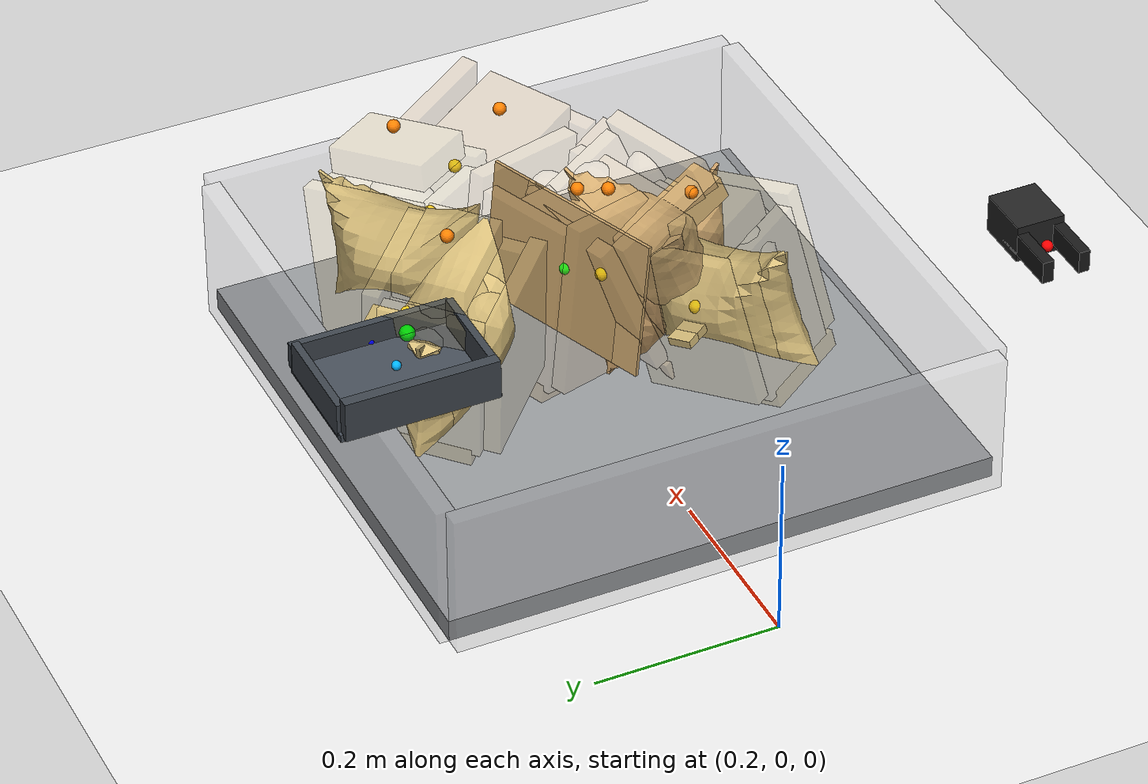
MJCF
<mujoco model="low_fill_top_collapsed_leaning_wedged_ep0_try1">
  <compiler angle="radian" coordinate="local" inertiafromgeom="true" meshdir="D:/Michael/2025/01.Research/01.Parceldetection/16.Pybullet/bullet3-master (1)/bullet3-master/examples/pybullet/examples/DeformableTest/Sackcodex2/object"/>
  <option timestep="0.002" gravity="0 0 -9.81" integrator="implicitfast" iterations="100" tolerance="1e-8"/>
  <size memory="768M" nconmax="12000"/>

  <visual>
    <global azimuth="128" elevation="-20"/>
    <headlight ambient="0.34 0.34 0.34" diffuse="0.78 0.78 0.78" specular="0.15 0.15 0.15"/>
    <rgba haze="0.11 0.13 0.18 1"/>
  </visual>

  <default>
    <geom condim="4" friction="1.15 0.03 0.01" margin="0.003" solimp="0.93 0.98 0.003" solref="0.012 1"/>
    <joint damping="1.2" armature="0.002"/>
    <position kp="2500" forcelimited="true" forcerange="-420 420"/>
    <motor ctrllimited="true"/>
  </default>

  <asset>
    <mesh name="sack_0_visual_mesh" file="sack10.obj" scale="0.0665 0.0665 0.0680"/>
    <mesh name="sack_1_visual_mesh" file="sack9.obj" scale="0.0704 0.0704 0.0740"/>
    <mesh name="sack_2_visual_mesh" file="sack2.obj" scale="0.0737 0.0737 0.0770"/>
    <mesh name="sack_3_visual_mesh" file="sack7.obj" scale="0.0715 0.0715 0.0766"/>
    <mesh name="sack_4_visual_mesh" file="sack3.obj" scale="0.0735 0.0735 0.0791"/>
    <mesh name="sack_5_visual_mesh" file="sack9.obj" scale="0.0733 0.0733 0.0775"/>
  </asset>

  <worldbody>
    <light name="key" pos="0.85 0.15 1.8" dir="-0.2 -0.1 -1" directional="true"/>
    <geom name="floor" type="plane" size="2 2 0.1" rgba="0.93 0.93 0.93 1"/>
    <geom name="work_pad" type="box" pos="0.62 0 0.012" size="0.30 0.30 0.012" rgba="0.60 0.61 0.62 1" friction="1.4 0.05 0.01"/>
    <geom name="corral_front" type="box" pos="0.93 0.00 0.08" size="0.010 0.30 0.08" rgba="0.55 0.55 0.58 0.22" friction="1.0 0.03 0.01"/>
    <geom name="corral_back" type="box" pos="0.31 0.00 0.08" size="0.010 0.30 0.08" rgba="0.55 0.55 0.58 0.18" friction="1.0 0.03 0.01"/>
    <geom name="corral_left" type="box" pos="0.62 0.30 0.08" size="0.30 0.010 0.08" rgba="0.55 0.55 0.58 0.14" friction="1.0 0.03 0.01"/>
    <geom name="corral_right" type="box" pos="0.62 -0.30 0.08" size="0.30 0.010 0.08" rgba="0.55 0.55 0.58 0.14" friction="1.0 0.03 0.01"/>
    <camera name="overview" pos="1.22 0.00 0.92" xyaxes="0 1 0 -0.46 0 0.88"/>

    <body name="gripper_mocap" mocap="true" pos="0.36 -0.33 0.30" quat="0.707107 0 -0.707107 0"/>
    <body name="scoop_mocap" mocap="true" pos="0.42 0.28 0.20" quat="1 0 0 0"/>

    <body name="gripper_ctrl_base" pos="0.36 -0.33 0.30">
      <inertial pos="0 0 0" mass="0.001" diaginertia="1e-6 1e-6 1e-6"/>
      <joint name="gripper_ctrl_x" type="slide" axis="1 0 0" limited="true" range="0.20 1.00"/>
      <body name="gripper_ctrl_y_body">
        <inertial pos="0 0 0" mass="0.001" diaginertia="1e-6 1e-6 1e-6"/>
        <joint name="gripper_ctrl_y" type="slide" axis="0 1 0" limited="true" range="-0.60 0.60"/>
        <body name="gripper_ctrl_z_body">
          <inertial pos="0 0 0" mass="0.001" diaginertia="1e-6 1e-6 1e-6"/>
          <joint name="gripper_ctrl_z" type="slide" axis="0 0 1" limited="true" range="0.04 0.70"/>
          <body name="gripper_ctrl_yaw_body">
            <inertial pos="0 0 0" mass="0.001" diaginertia="1e-6 1e-6 1e-6"/>
            <joint name="gripper_ctrl_yaw" type="hinge" axis="0 0 1" limited="true" range="-3.1416 3.1416"/>
            <body name="gripper_ctrl_pitch_body">
              <inertial pos="0 0 0" mass="0.001" diaginertia="1e-6 1e-6 1e-6"/>
              <joint name="gripper_ctrl_pitch" type="hinge" axis="0 1 0" limited="true" range="-3.1416 3.1416"/>
              <body name="gripper_ctrl_roll_body">
                <inertial pos="0 0 0" mass="0.001" diaginertia="1e-6 1e-6 1e-6"/>
                <joint name="gripper_ctrl_roll" type="hinge" axis="1 0 0" limited="true" range="-3.1416 3.1416"/>
              </body>
            </body>
          </body>
        </body>
      </body>
    </body>

    <body name="scoop_ctrl_base" pos="0.42 0.28 0.20">
      <inertial pos="0 0 0" mass="0.001" diaginertia="1e-6 1e-6 1e-6"/>
      <joint name="scoop_ctrl_x" type="slide" axis="1 0 0" limited="true" range="0.20 1.00"/>
      <body name="scoop_ctrl_y_body">
        <inertial pos="0 0 0" mass="0.001" diaginertia="1e-6 1e-6 1e-6"/>
        <joint name="scoop_ctrl_y" type="slide" axis="0 1 0" limited="true" range="-0.60 0.60"/>
        <body name="scoop_ctrl_z_body">
          <inertial pos="0 0 0" mass="0.001" diaginertia="1e-6 1e-6 1e-6"/>
          <joint name="scoop_ctrl_z" type="slide" axis="0 0 1" limited="true" range="0.04 0.70"/>
          <body name="scoop_ctrl_yaw_body">
            <inertial pos="0 0 0" mass="0.001" diaginertia="1e-6 1e-6 1e-6"/>
            <joint name="scoop_ctrl_yaw" type="hinge" axis="0 0 1" limited="true" range="-3.1416 3.1416"/>
            <body name="scoop_ctrl_pitch_body">
              <inertial pos="0 0 0" mass="0.001" diaginertia="1e-6 1e-6 1e-6"/>
              <joint name="scoop_ctrl_pitch" type="hinge" axis="0 1 0" limited="true" range="-3.1416 3.1416"/>
              <body name="scoop_ctrl_roll_body">
                <inertial pos="0 0 0" mass="0.001" diaginertia="1e-6 1e-6 1e-6"/>
                <joint name="scoop_ctrl_roll" type="hinge" axis="1 0 0" limited="true" range="-3.1416 3.1416"/>
              </body>
            </body>
          </body>
        </body>
      </body>
    </body>

    <body name="gripper_tool" pos="0.36 -0.33 0.30" quat="0.707107 0 -0.707107 0">
      <freejoint name="gripper_tool_free"/>
      <inertial pos="0 0 0.04" mass="0.08" diaginertia="0.0002 0.0002 0.0002"/>
      <geom name="gripper_palm" type="box" pos="0 0 0.030" size="0.020 0.026 0.030" rgba="0.14 0.14 0.14 1"/>
      <body name="left_finger_body" pos="0 0 0.072">
        <joint name="left_finger_slide" type="slide" axis="0 1 0" limited="true" range="0.010 0.040" damping="12"/>
        <geom name="left_finger_geom" type="box" pos="0 0.020 0" size="0.012 0.006 0.040" rgba="0.10 0.10 0.10 1" friction="2.2 0.05 0.01"/>
      </body>
      <body name="right_finger_body" pos="0 0 0.072">
        <joint name="right_finger_slide" type="slide" axis="0 -1 0" limited="true" range="0.010 0.040" damping="12"/>
        <geom name="right_finger_geom" type="box" pos="0 -0.020 0" size="0.012 0.006 0.040" rgba="0.10 0.10 0.10 1" friction="2.2 0.05 0.01"/>
      </body>
      <site name="gripper_pinch_site" pos="0 0 0.074" size="0.006" rgba="1 0 0 1"/>
    </body>

    <body name="scoop_tool" pos="0.42 0.28 0.20" quat="1 0 0 0">
      <freejoint name="scoop_tool_free"/>
      <inertial pos="0 0 0.02" mass="0.10" diaginertia="0.0003 0.0003 0.0003"/>
      <geom name="scoop_plate" type="box" pos="0.062 0 0" size="0.062 0.085 0.004" rgba="0.28 0.31 0.35 1" friction="1.7 0.05 0.01"/>
      <geom name="scoop_lip" type="box" pos="0.126 0 0.014" size="0.004 0.085 0.014" rgba="0.24 0.27 0.30 1" friction="1.7 0.05 0.01"/>
      <geom name="scoop_left_rail" type="box" pos="0.062 0.082 0.018" size="0.056 0.004 0.018" rgba="0.24 0.27 0.30 1"/>
      <geom name="scoop_right_rail" type="box" pos="0.062 -0.082 0.018" size="0.056 0.004 0.018" rgba="0.24 0.27 0.30 1"/>
      <geom name="scoop_backstop" type="box" pos="0.000 0 0.022" size="0.006 0.082 0.022" rgba="0.24 0.27 0.30 1"/>
      <site name="scoop_tip_site" pos="0.126 0 0.005" size="0.005" rgba="0 0 1 1"/>
      <site name="scoop_center_site" pos="0.060 0 0.020" size="0.005" rgba="0 0.7 1 1"/>
      <site name="score_overlay_site" pos="0.030 0 0.080" size="0.008" rgba="0 1 0 0.8"/>
    </body>

    <body name="sack_0" pos="0.6288 -0.0559 0.1625" euler="-0.3781 -0.0236 0.2628">
      <freejoint name="sack_0_free"/>

      <geom name="sack_0_visual" type="mesh" mesh="sack_0_visual_mesh" rgba="0.820 0.670 0.440 0.92" contype="0" conaffinity="0"/>
      <site name="sack_0_center_site" pos="0 0 0.000" size="0.006" rgba="0 1 0 1"/>
      <site name="sack_0_top_site" pos="0 0.0060 0.0931" size="0.007" rgba="1 0.5 0 1"/>
      <site name="sack_0_side_site" pos="0.0000 0.0475 0.018" size="0.007" rgba="1 0.8 0 1"/>

      <geom name="sack_0_core_geom" type="ellipsoid" pos="0 0 0.0055" size="0.0449 0.0348 0.0666" mass="0.7941" rgba="0.820 0.670 0.440 0.12" friction="1.0 0.03 0.01"/>
      <geom name="sack_0_core_front" type="capsule" fromto="-0.0200 0 -0.0200 0.0450 0 0.0600" size="0.0294" mass="0.1891" rgba="0.820 0.670 0.440 0.10"/>
      <geom name="sack_0_core_left" type="capsule" fromto="-0.008 0.0304 -0.010 0.018 0.0484 0.060" size="0.0241" mass="0.3403" rgba="0.820 0.670 0.440 0.10"/>
      <geom name="sack_0_core_right" type="capsule" fromto="-0.006 -0.0304 -0.008 0.020 -0.0504 0.054" size="0.0221" mass="0.3403" rgba="0.820 0.670 0.440 0.10"/>

      <body name="sack_0_bottom_support_proxy_body" pos="0 0.0149 -0.0893">
        <joint name="sack_0_bottom_x" type="slide" axis="1 0 0" limited="true" range="-0.012 0.012" damping="18" stiffness="442.0"/>
        <joint name="sack_0_bottom_y" type="slide" axis="0 1 0" limited="true" range="-0.012 0.012" damping="18" stiffness="442.0"/>
        <joint name="sack_0_bottom_z" type="slide" axis="0 0 1" limited="true" range="-0.008 0.020" damping="24" stiffness="544.7"/>
        <geom name="sack_0_bottom_support_proxy" type="box" size="0.0724 0.0535 0.0100" mass="0.1512" rgba="0.820 0.670 0.440 0.34" friction="1.55 0.05 0.01"/>
      </body>

      <body name="sack_0_top_grasp_proxy_body" pos="0.0000 0.0060 0.0631">
        <joint name="sack_0_top_x" type="slide" axis="1 0 0" limited="true" range="-0.018 0.018" damping="12" stiffness="169.7"/>
        <joint name="sack_0_top_y" type="slide" axis="0 1 0" limited="true" range="-0.018 0.018" damping="12" stiffness="169.7"/>
        <joint name="sack_0_top_z" type="slide" axis="0 0 1" limited="true" range="-0.040 0.010" damping="14" stiffness="124.0"/>
        <geom name="sack_0_top_grasp_proxy" type="box" size="0.0564 0.0375 0.0150" mass="0.1134" rgba="0.820 0.670 0.440 0.26" friction="2.2 0.05 0.01"/>
      </body>

      <body name="sack_0_left_side_proxy_body" pos="0 0.0680 0.010">
        <joint name="sack_0_left_side_slide" type="slide" axis="0 -1 0" limited="true" range="-0.028 0.016" damping="16" stiffness="216.5"/>
        <geom name="sack_0_left_side_proxy" type="box" size="0.0684 0.0090 0.0873" mass="0.1134" rgba="0.820 0.670 0.440 0.24"/>
      </body>

      <body name="sack_0_right_side_proxy_body" pos="0 -0.0640 0.010">
        <joint name="sack_0_right_side_slide" type="slide" axis="0 1 0" limited="true" range="-0.028 0.016" damping="16" stiffness="200.8"/>
        <geom name="sack_0_right_side_proxy" type="box" size="0.0684 0.0090 0.0873" mass="0.1134" rgba="0.820 0.670 0.440 0.24"/>
      </body>

      <body name="sack_0_front_proxy_body" pos="0.0624 0 0.000">
        <joint name="sack_0_front_slide" type="slide" axis="-1 0 0" limited="true" range="-0.022 0.012" damping="15" stiffness="211.0"/>
        <geom name="sack_0_front_support_proxy" type="box" size="0.0090 0.0535 0.0853" mass="0.0945" rgba="0.820 0.670 0.440 0.22"/>
      </body>

      <body name="sack_0_back_proxy_body" pos="-0.0624 0 0.000">
        <joint name="sack_0_back_slide" type="slide" axis="1 0 0" limited="true" range="-0.022 0.012" damping="15" stiffness="195.3"/>
        <geom name="sack_0_back_support_proxy" type="box" size="0.0090 0.0535 0.0853" mass="0.0945" rgba="0.820 0.670 0.440 0.22"/>
      </body>

      <body name="sack_0_shape_proxy_body" pos="0.0000 0.0224 0.0460">
        <joint name="sack_0_bulge_y" type="slide" axis="0 1 0" limited="true" range="-0.020 0.020" damping="8" stiffness="112.0"/>
        <joint name="sack_0_bulge_z" type="slide" axis="0 0 1" limited="true" range="-0.014 0.028" damping="8" stiffness="109.0"/>
        <geom name="sack_0_shape_proxy" type="ellipsoid" size="0.0201 0.0162 0.0264" mass="0.0756" rgba="0.820 0.670 0.440 0.28"/>
      </body>
    </body>

    <body name="sack_1" pos="0.5594 -0.1162 0.1278" euler="-0.2095 0.1244 -2.5946">
      <freejoint name="sack_1_free"/>

      <geom name="sack_1_visual" type="mesh" mesh="sack_1_visual_mesh" rgba="0.840 0.740 0.480 0.92" contype="0" conaffinity="0"/>
      <site name="sack_1_center_site" pos="0 0 0.000" size="0.006" rgba="0 1 0 1"/>
      <site name="sack_1_top_site" pos="0 -0.0060 0.1324" size="0.007" rgba="1 0.5 0 1"/>
      <site name="sack_1_side_site" pos="0.0000 -0.0476 0.018" size="0.007" rgba="1 0.8 0 1"/>

      <geom name="sack_1_core_geom" type="ellipsoid" pos="0 0 0.0059" size="0.0496 0.0410 0.0876" mass="1.2091" rgba="0.840 0.740 0.480 0.12" friction="1.0 0.03 0.01"/>
      <geom name="sack_1_core_front" type="capsule" fromto="-0.0200 0 -0.0200 0.0450 0 0.0600" size="0.0304" mass="0.2879" rgba="0.840 0.740 0.480 0.10"/>
      <geom name="sack_1_core_left" type="capsule" fromto="-0.008 0.0282 -0.010 0.018 0.0462 0.060" size="0.0241" mass="0.5182" rgba="0.840 0.740 0.480 0.10"/>
      <geom name="sack_1_core_right" type="capsule" fromto="-0.006 -0.0282 -0.008 0.020 -0.0482 0.054" size="0.0221" mass="0.5182" rgba="0.840 0.740 0.480 0.10"/>

      <body name="sack_1_bottom_support_proxy_body" pos="0 0.0086 -0.0881">
        <joint name="sack_1_bottom_x" type="slide" axis="1 0 0" limited="true" range="-0.012 0.012" damping="18" stiffness="470.7"/>
        <joint name="sack_1_bottom_y" type="slide" axis="0 1 0" limited="true" range="-0.012 0.012" damping="18" stiffness="470.7"/>
        <joint name="sack_1_bottom_z" type="slide" axis="0 0 1" limited="true" range="-0.008 0.020" damping="24" stiffness="579.7"/>
        <geom name="sack_1_bottom_support_proxy" type="box" size="0.0713 0.0536 0.0100" mass="0.2303" rgba="0.840 0.740 0.480 0.34" friction="1.55 0.05 0.01"/>
      </body>

      <body name="sack_1_top_grasp_proxy_body" pos="0.0000 -0.0060 0.1024">
        <joint name="sack_1_top_x" type="slide" axis="1 0 0" limited="true" range="-0.018 0.018" damping="12" stiffness="180.8"/>
        <joint name="sack_1_top_y" type="slide" axis="0 1 0" limited="true" range="-0.018 0.018" damping="12" stiffness="180.8"/>
        <joint name="sack_1_top_z" type="slide" axis="0 0 1" limited="true" range="-0.040 0.010" damping="14" stiffness="133.6"/>
        <geom name="sack_1_top_grasp_proxy" type="box" size="0.0553 0.0376 0.0150" mass="0.1727" rgba="0.840 0.740 0.480 0.26" friction="2.2 0.05 0.01"/>
      </body>

      <body name="sack_1_left_side_proxy_body" pos="0 0.0659 0.010">
        <joint name="sack_1_left_side_slide" type="slide" axis="0 -1 0" limited="true" range="-0.028 0.016" damping="16" stiffness="236.8"/>
        <geom name="sack_1_left_side_proxy" type="box" size="0.0673 0.0090 0.0861" mass="0.1727" rgba="0.840 0.740 0.480 0.24"/>
      </body>

      <body name="sack_1_right_side_proxy_body" pos="0 -0.0619 0.010">
        <joint name="sack_1_right_side_slide" type="slide" axis="0 1 0" limited="true" range="-0.028 0.016" damping="16" stiffness="219.6"/>
        <geom name="sack_1_right_side_proxy" type="box" size="0.0673 0.0090 0.0861" mass="0.1727" rgba="0.840 0.740 0.480 0.24"/>
      </body>

      <body name="sack_1_front_proxy_body" pos="0.0613 0 0.000">
        <joint name="sack_1_front_slide" type="slide" axis="-1 0 0" limited="true" range="-0.022 0.012" damping="15" stiffness="225.3"/>
        <geom name="sack_1_front_support_proxy" type="box" size="0.0090 0.0536 0.0841" mass="0.1439" rgba="0.840 0.740 0.480 0.22"/>
      </body>

      <body name="sack_1_back_proxy_body" pos="-0.0613 0 0.000">
        <joint name="sack_1_back_slide" type="slide" axis="1 0 0" limited="true" range="-0.022 0.012" damping="15" stiffness="208.1"/>
        <geom name="sack_1_back_support_proxy" type="box" size="0.0090 0.0536 0.0841" mass="0.1439" rgba="0.840 0.740 0.480 0.22"/>
      </body>

      <body name="sack_1_shape_proxy_body" pos="0.0000 -0.0202 0.0364">
        <joint name="sack_1_bulge_y" type="slide" axis="0 1 0" limited="true" range="-0.020 0.020" damping="8" stiffness="92.9"/>
        <joint name="sack_1_bulge_z" type="slide" axis="0 0 1" limited="true" range="-0.014 0.028" damping="8" stiffness="94.7"/>
        <geom name="sack_1_shape_proxy" type="ellipsoid" size="0.0201 0.0162 0.0261" mass="0.1152" rgba="0.840 0.740 0.480 0.28"/>
      </body>
    </body>

    <body name="sack_2" pos="0.6506 0.0208 0.1417" euler="0.1103 0.0274 -1.1956">
      <freejoint name="sack_2_free"/>

      <geom name="sack_2_visual" type="mesh" mesh="sack_2_visual_mesh" rgba="0.820 0.670 0.440 0.92" contype="0" conaffinity="0"/>
      <site name="sack_2_center_site" pos="0 0 0.000" size="0.006" rgba="0 1 0 1"/>
      <site name="sack_2_top_site" pos="0 -0.0060 0.0985" size="0.007" rgba="1 0.5 0 1"/>
      <site name="sack_2_side_site" pos="0.0000 -0.0494 0.018" size="0.007" rgba="1 0.8 0 1"/>

      <geom name="sack_2_core_geom" type="ellipsoid" pos="0 0 0.0055" size="0.0455 0.0356 0.0678" mass="0.8028" rgba="0.820 0.670 0.440 0.12" friction="1.0 0.03 0.01"/>
      <geom name="sack_2_core_front" type="capsule" fromto="-0.0200 0 -0.0200 0.0450 0 0.0600" size="0.0301" mass="0.1911" rgba="0.820 0.670 0.440 0.10"/>
      <geom name="sack_2_core_left" type="capsule" fromto="-0.008 0.0297 -0.010 0.018 0.0477 0.060" size="0.0241" mass="0.3441" rgba="0.820 0.670 0.440 0.10"/>
      <geom name="sack_2_core_right" type="capsule" fromto="-0.006 -0.0297 -0.008 0.020 -0.0497 0.054" size="0.0221" mass="0.3441" rgba="0.820 0.670 0.440 0.10"/>

      <body name="sack_2_bottom_support_proxy_body" pos="0 0.0071 -0.0985">
        <joint name="sack_2_bottom_x" type="slide" axis="1 0 0" limited="true" range="-0.012 0.012" damping="18" stiffness="464.3"/>
        <joint name="sack_2_bottom_y" type="slide" axis="0 1 0" limited="true" range="-0.012 0.012" damping="18" stiffness="464.3"/>
        <joint name="sack_2_bottom_z" type="slide" axis="0 0 1" limited="true" range="-0.008 0.020" damping="24" stiffness="571.9"/>
        <geom name="sack_2_bottom_support_proxy" type="box" size="0.0731 0.0554 0.0100" mass="0.1529" rgba="0.820 0.670 0.440 0.34" friction="1.55 0.05 0.01"/>
      </body>

      <body name="sack_2_top_grasp_proxy_body" pos="0.0000 -0.0060 0.0685">
        <joint name="sack_2_top_x" type="slide" axis="1 0 0" limited="true" range="-0.018 0.018" damping="12" stiffness="178.3"/>
        <joint name="sack_2_top_y" type="slide" axis="0 1 0" limited="true" range="-0.018 0.018" damping="12" stiffness="178.3"/>
        <joint name="sack_2_top_z" type="slide" axis="0 0 1" limited="true" range="-0.040 0.010" damping="14" stiffness="131.4"/>
        <geom name="sack_2_top_grasp_proxy" type="box" size="0.0571 0.0394 0.0150" mass="0.1147" rgba="0.820 0.670 0.440 0.26" friction="2.2 0.05 0.01"/>
      </body>

      <body name="sack_2_left_side_proxy_body" pos="0 0.0690 0.010">
        <joint name="sack_2_left_side_slide" type="slide" axis="0 -1 0" limited="true" range="-0.028 0.016" damping="16" stiffness="231.3"/>
        <geom name="sack_2_left_side_proxy" type="box" size="0.0691 0.0090 0.0965" mass="0.1147" rgba="0.820 0.670 0.440 0.24"/>
      </body>

      <body name="sack_2_right_side_proxy_body" pos="0 -0.0650 0.010">
        <joint name="sack_2_right_side_slide" type="slide" axis="0 1 0" limited="true" range="-0.028 0.016" damping="16" stiffness="214.4"/>
        <geom name="sack_2_right_side_proxy" type="box" size="0.0691 0.0090 0.0965" mass="0.1147" rgba="0.820 0.670 0.440 0.24"/>
      </body>

      <body name="sack_2_front_proxy_body" pos="0.0631 0 0.000">
        <joint name="sack_2_front_slide" type="slide" axis="-1 0 0" limited="true" range="-0.022 0.012" damping="15" stiffness="222.1"/>
        <geom name="sack_2_front_support_proxy" type="box" size="0.0090 0.0554 0.0945" mass="0.0956" rgba="0.820 0.670 0.440 0.22"/>
      </body>

      <body name="sack_2_back_proxy_body" pos="-0.0631 0 0.000">
        <joint name="sack_2_back_slide" type="slide" axis="1 0 0" limited="true" range="-0.022 0.012" damping="15" stiffness="205.2"/>
        <geom name="sack_2_back_support_proxy" type="box" size="0.0090 0.0554 0.0945" mass="0.0956" rgba="0.820 0.670 0.440 0.22"/>
      </body>

      <body name="sack_2_shape_proxy_body" pos="0.0000 -0.0217 0.0386">
        <joint name="sack_2_bulge_y" type="slide" axis="0 1 0" limited="true" range="-0.020 0.020" damping="8" stiffness="97.2"/>
        <joint name="sack_2_bulge_z" type="slide" axis="0 0 1" limited="true" range="-0.014 0.028" damping="8" stiffness="97.9"/>
        <geom name="sack_2_shape_proxy" type="ellipsoid" size="0.0201 0.0162 0.0264" mass="0.0765" rgba="0.820 0.670 0.440 0.28"/>
      </body>
    </body>

    <body name="sack_3" pos="0.7727 0.1441 0.1241" euler="-0.0400 0.1360 0.6019">
      <freejoint name="sack_3_free"/>

      <geom name="sack_3_visual" type="mesh" mesh="sack_3_visual_mesh" rgba="0.840 0.740 0.480 0.92" contype="0" conaffinity="0"/>
      <site name="sack_3_center_site" pos="0 0 0.000" size="0.006" rgba="0 1 0 1"/>
      <site name="sack_3_top_site" pos="0 -0.0060 0.1422" size="0.007" rgba="1 0.5 0 1"/>
      <site name="sack_3_side_site" pos="0.0000 -0.0491 0.018" size="0.007" rgba="1 0.8 0 1"/>

      <geom name="sack_3_core_geom" type="ellipsoid" pos="0 0 0.0060" size="0.0502 0.0419 0.0891" mass="1.2149" rgba="0.840 0.740 0.480 0.12" friction="1.0 0.03 0.01"/>
      <geom name="sack_3_core_front" type="capsule" fromto="-0.0200 0 -0.0200 0.0450 0 0.0600" size="0.0311" mass="0.2893" rgba="0.840 0.740 0.480 0.10"/>
      <geom name="sack_3_core_left" type="capsule" fromto="-0.008 0.0216 -0.010 0.018 0.0396 0.060" size="0.0240" mass="0.5207" rgba="0.840 0.740 0.480 0.10"/>
      <geom name="sack_3_core_right" type="capsule" fromto="-0.006 -0.0216 -0.008 0.020 -0.0416 0.054" size="0.0220" mass="0.5207" rgba="0.840 0.740 0.480 0.10"/>

      <body name="sack_3_bottom_support_proxy_body" pos="0 0.0104 -0.0889">
        <joint name="sack_3_bottom_x" type="slide" axis="1 0 0" limited="true" range="-0.012 0.012" damping="18" stiffness="491.5"/>
        <joint name="sack_3_bottom_y" type="slide" axis="0 1 0" limited="true" range="-0.012 0.012" damping="18" stiffness="491.5"/>
        <joint name="sack_3_bottom_z" type="slide" axis="0 0 1" limited="true" range="-0.008 0.020" damping="24" stiffness="605.2"/>
        <geom name="sack_3_bottom_support_proxy" type="box" size="0.0719 0.0551 0.0100" mass="0.2314" rgba="0.840 0.740 0.480 0.34" friction="1.55 0.05 0.01"/>
      </body>

      <body name="sack_3_top_grasp_proxy_body" pos="0.0000 -0.0060 0.1122">
        <joint name="sack_3_top_x" type="slide" axis="1 0 0" limited="true" range="-0.018 0.018" damping="12" stiffness="188.9"/>
        <joint name="sack_3_top_y" type="slide" axis="0 1 0" limited="true" range="-0.018 0.018" damping="12" stiffness="188.9"/>
        <joint name="sack_3_top_z" type="slide" axis="0 0 1" limited="true" range="-0.040 0.010" damping="14" stiffness="140.5"/>
        <geom name="sack_3_top_grasp_proxy" type="box" size="0.0559 0.0391 0.0150" mass="0.1736" rgba="0.840 0.740 0.480 0.26" friction="2.2 0.05 0.01"/>
      </body>

      <body name="sack_3_left_side_proxy_body" pos="0 0.0607 0.010">
        <joint name="sack_3_left_side_slide" type="slide" axis="0 -1 0" limited="true" range="-0.028 0.016" damping="16" stiffness="250.9"/>
        <geom name="sack_3_left_side_proxy" type="box" size="0.0679 0.0090 0.0869" mass="0.1736" rgba="0.840 0.740 0.480 0.24"/>
      </body>

      <body name="sack_3_right_side_proxy_body" pos="0 -0.0567 0.010">
        <joint name="sack_3_right_side_slide" type="slide" axis="0 1 0" limited="true" range="-0.028 0.016" damping="16" stiffness="232.5"/>
        <geom name="sack_3_right_side_proxy" type="box" size="0.0679 0.0090 0.0869" mass="0.1736" rgba="0.840 0.740 0.480 0.24"/>
      </body>

      <body name="sack_3_front_proxy_body" pos="0.0619 0 0.000">
        <joint name="sack_3_front_slide" type="slide" axis="-1 0 0" limited="true" range="-0.022 0.012" damping="15" stiffness="235.8"/>
        <geom name="sack_3_front_support_proxy" type="box" size="0.0090 0.0551 0.0849" mass="0.1446" rgba="0.840 0.740 0.480 0.22"/>
      </body>

      <body name="sack_3_back_proxy_body" pos="-0.0619 0 0.000">
        <joint name="sack_3_back_slide" type="slide" axis="1 0 0" limited="true" range="-0.022 0.012" damping="15" stiffness="217.3"/>
        <geom name="sack_3_back_support_proxy" type="box" size="0.0090 0.0551 0.0849" mass="0.1446" rgba="0.840 0.740 0.480 0.22"/>
      </body>

      <body name="sack_3_shape_proxy_body" pos="0.0000 -0.0136 0.0295">
        <joint name="sack_3_bulge_y" type="slide" axis="0 1 0" limited="true" range="-0.020 0.020" damping="8" stiffness="79.0"/>
        <joint name="sack_3_bulge_z" type="slide" axis="0 0 1" limited="true" range="-0.014 0.028" damping="8" stiffness="84.2"/>
        <geom name="sack_3_shape_proxy" type="ellipsoid" size="0.0200 0.0160 0.0260" mass="0.1157" rgba="0.840 0.740 0.480 0.28"/>
      </body>
    </body>

    <body name="sack_4" pos="0.8231 0.0133 0.1141" euler="-0.0156 -0.1156 -0.9946">
      <freejoint name="sack_4_free"/>

      <geom name="sack_4_visual" type="mesh" mesh="sack_4_visual_mesh" rgba="0.760 0.600 0.400 0.92" contype="0" conaffinity="0"/>
      <site name="sack_4_center_site" pos="0 0 0.000" size="0.006" rgba="0 1 0 1"/>
      <site name="sack_4_top_site" pos="0 0.0060 0.1232" size="0.007" rgba="1 0.5 0 1"/>
      <site name="sack_4_side_site" pos="0.0000 0.0592 0.018" size="0.007" rgba="1 0.8 0 1"/>

      <geom name="sack_4_core_geom" type="ellipsoid" pos="0 0 0.0058" size="0.0453 0.0358 0.0800" mass="0.8702" rgba="0.760 0.600 0.400 0.12" friction="1.0 0.03 0.01"/>
      <geom name="sack_4_core_front" type="capsule" fromto="-0.0200 0 -0.0200 0.0450 0 0.0600" size="0.0312" mass="0.2072" rgba="0.760 0.600 0.400 0.10"/>
      <geom name="sack_4_core_left" type="capsule" fromto="-0.008 0.0395 -0.010 0.018 0.0575 0.060" size="0.0242" mass="0.3729" rgba="0.760 0.600 0.400 0.10"/>
      <geom name="sack_4_core_right" type="capsule" fromto="-0.006 -0.0395 -0.008 0.020 -0.0595 0.054" size="0.0222" mass="0.3729" rgba="0.760 0.600 0.400 0.10"/>

      <body name="sack_4_bottom_support_proxy_body" pos="0 0.0001 -0.0916">
        <joint name="sack_4_bottom_x" type="slide" axis="1 0 0" limited="true" range="-0.012 0.012" damping="18" stiffness="495.5"/>
        <joint name="sack_4_bottom_y" type="slide" axis="0 1 0" limited="true" range="-0.012 0.012" damping="18" stiffness="495.5"/>
        <joint name="sack_4_bottom_z" type="slide" axis="0 0 1" limited="true" range="-0.008 0.020" damping="24" stiffness="610.0"/>
        <geom name="sack_4_bottom_support_proxy" type="box" size="0.0762 0.0652 0.0100" mass="0.1657" rgba="0.760 0.600 0.400 0.34" friction="1.55 0.05 0.01"/>
      </body>

      <body name="sack_4_top_grasp_proxy_body" pos="0.0000 0.0060 0.0932">
        <joint name="sack_4_top_x" type="slide" axis="1 0 0" limited="true" range="-0.018 0.018" damping="12" stiffness="190.5"/>
        <joint name="sack_4_top_y" type="slide" axis="0 1 0" limited="true" range="-0.018 0.018" damping="12" stiffness="190.5"/>
        <joint name="sack_4_top_z" type="slide" axis="0 0 1" limited="true" range="-0.040 0.010" damping="14" stiffness="141.8"/>
        <geom name="sack_4_top_grasp_proxy" type="box" size="0.0602 0.0492 0.0150" mass="0.1243" rgba="0.760 0.600 0.400 0.26" friction="2.2 0.05 0.01"/>
      </body>

      <body name="sack_4_left_side_proxy_body" pos="0 0.0887 0.010">
        <joint name="sack_4_left_side_slide" type="slide" axis="0 -1 0" limited="true" range="-0.028 0.016" damping="16" stiffness="253.0"/>
        <geom name="sack_4_left_side_proxy" type="box" size="0.0722 0.0090 0.0896" mass="0.1243" rgba="0.760 0.600 0.400 0.24"/>
      </body>

      <body name="sack_4_right_side_proxy_body" pos="0 -0.0847 0.010">
        <joint name="sack_4_right_side_slide" type="slide" axis="0 1 0" limited="true" range="-0.028 0.016" damping="16" stiffness="234.4"/>
        <geom name="sack_4_right_side_proxy" type="box" size="0.0722 0.0090 0.0896" mass="0.1243" rgba="0.760 0.600 0.400 0.24"/>
      </body>

      <body name="sack_4_front_proxy_body" pos="0.0662 0 0.000">
        <joint name="sack_4_front_slide" type="slide" axis="-1 0 0" limited="true" range="-0.022 0.012" damping="15" stiffness="237.7"/>
        <geom name="sack_4_front_support_proxy" type="box" size="0.0090 0.0652 0.0876" mass="0.1036" rgba="0.760 0.600 0.400 0.22"/>
      </body>

      <body name="sack_4_back_proxy_body" pos="-0.0662 0 0.000">
        <joint name="sack_4_back_slide" type="slide" axis="1 0 0" limited="true" range="-0.022 0.012" damping="15" stiffness="219.1"/>
        <geom name="sack_4_back_support_proxy" type="box" size="0.0090 0.0652 0.0876" mass="0.1036" rgba="0.760 0.600 0.400 0.22"/>
      </body>

      <body name="sack_4_shape_proxy_body" pos="0.0000 0.0315 0.0282">
        <joint name="sack_4_bulge_y" type="slide" axis="0 1 0" limited="true" range="-0.020 0.020" damping="8" stiffness="76.4"/>
        <joint name="sack_4_bulge_z" type="slide" axis="0 0 1" limited="true" range="-0.014 0.028" damping="8" stiffness="82.3"/>
        <geom name="sack_4_shape_proxy" type="ellipsoid" size="0.0202 0.0164 0.0262" mass="0.0829" rgba="0.760 0.600 0.400 0.28"/>
      </body>
    </body>

    <body name="sack_5" pos="0.5757 0.1791 0.1565" euler="-0.0281 -0.1162 2.3762">
      <freejoint name="sack_5_free"/>

      <geom name="sack_5_visual" type="mesh" mesh="sack_5_visual_mesh" rgba="0.840 0.740 0.480 0.92" contype="0" conaffinity="0"/>
      <site name="sack_5_center_site" pos="0 0 0.000" size="0.006" rgba="0 1 0 1"/>
      <site name="sack_5_top_site" pos="0 -0.0060 0.1356" size="0.007" rgba="1 0.5 0 1"/>
      <site name="sack_5_side_site" pos="0.0000 -0.0482 0.018" size="0.007" rgba="1 0.8 0 1"/>

      <geom name="sack_5_core_geom" type="ellipsoid" pos="0 0 0.0059" size="0.0498 0.0413 0.0881" mass="0.9732" rgba="0.840 0.740 0.480 0.12" friction="1.0 0.03 0.01"/>
      <geom name="sack_5_core_front" type="capsule" fromto="-0.0200 0 -0.0200 0.0450 0 0.0600" size="0.0306" mass="0.2317" rgba="0.840 0.740 0.480 0.10"/>
      <geom name="sack_5_core_left" type="capsule" fromto="-0.008 0.0279 -0.010 0.018 0.0459 0.060" size="0.0241" mass="0.4171" rgba="0.840 0.740 0.480 0.10"/>
      <geom name="sack_5_core_right" type="capsule" fromto="-0.006 -0.0279 -0.008 0.020 -0.0479 0.054" size="0.0221" mass="0.4171" rgba="0.840 0.740 0.480 0.10"/>

      <body name="sack_5_bottom_support_proxy_body" pos="0 -0.0085 -0.0879">
        <joint name="sack_5_bottom_x" type="slide" axis="1 0 0" limited="true" range="-0.012 0.012" damping="18" stiffness="478.0"/>
        <joint name="sack_5_bottom_y" type="slide" axis="0 1 0" limited="true" range="-0.012 0.012" damping="18" stiffness="478.0"/>
        <joint name="sack_5_bottom_z" type="slide" axis="0 0 1" limited="true" range="-0.008 0.020" damping="24" stiffness="588.6"/>
        <geom name="sack_5_bottom_support_proxy" type="box" size="0.0715 0.0542 0.0100" mass="0.1854" rgba="0.840 0.740 0.480 0.34" friction="1.55 0.05 0.01"/>
      </body>

      <body name="sack_5_top_grasp_proxy_body" pos="0.0000 -0.0060 0.1056">
        <joint name="sack_5_top_x" type="slide" axis="1 0 0" limited="true" range="-0.018 0.018" damping="12" stiffness="183.7"/>
        <joint name="sack_5_top_y" type="slide" axis="0 1 0" limited="true" range="-0.018 0.018" damping="12" stiffness="183.7"/>
        <joint name="sack_5_top_z" type="slide" axis="0 0 1" limited="true" range="-0.040 0.010" damping="14" stiffness="136.0"/>
        <geom name="sack_5_top_grasp_proxy" type="box" size="0.0555 0.0382 0.0150" mass="0.1390" rgba="0.840 0.740 0.480 0.26" friction="2.2 0.05 0.01"/>
      </body>

      <body name="sack_5_left_side_proxy_body" pos="0 0.0661 0.010">
        <joint name="sack_5_left_side_slide" type="slide" axis="0 -1 0" limited="true" range="-0.028 0.016" damping="16" stiffness="241.7"/>
        <geom name="sack_5_left_side_proxy" type="box" size="0.0675 0.0090 0.0859" mass="0.1390" rgba="0.840 0.740 0.480 0.24"/>
      </body>

      <body name="sack_5_right_side_proxy_body" pos="0 -0.0621 0.010">
        <joint name="sack_5_right_side_slide" type="slide" axis="0 1 0" limited="true" range="-0.028 0.016" damping="16" stiffness="224.1"/>
        <geom name="sack_5_right_side_proxy" type="box" size="0.0675 0.0090 0.0859" mass="0.1390" rgba="0.840 0.740 0.480 0.24"/>
      </body>

      <body name="sack_5_front_proxy_body" pos="0.0615 0 0.000">
        <joint name="sack_5_front_slide" type="slide" axis="-1 0 0" limited="true" range="-0.022 0.012" damping="15" stiffness="229.0"/>
        <geom name="sack_5_front_support_proxy" type="box" size="0.0090 0.0542 0.0839" mass="0.1159" rgba="0.840 0.740 0.480 0.22"/>
      </body>

      <body name="sack_5_back_proxy_body" pos="-0.0615 0 0.000">
        <joint name="sack_5_back_slide" type="slide" axis="1 0 0" limited="true" range="-0.022 0.012" damping="15" stiffness="211.3"/>
        <geom name="sack_5_back_support_proxy" type="box" size="0.0090 0.0542 0.0839" mass="0.1159" rgba="0.840 0.740 0.480 0.22"/>
      </body>

      <body name="sack_5_shape_proxy_body" pos="0.0000 -0.0199 0.0340">
        <joint name="sack_5_bulge_y" type="slide" axis="0 1 0" limited="true" range="-0.020 0.020" damping="8" stiffness="88.0"/>
        <joint name="sack_5_bulge_z" type="slide" axis="0 0 1" limited="true" range="-0.014 0.028" damping="8" stiffness="91.0"/>
        <geom name="sack_5_shape_proxy" type="ellipsoid" size="0.0201 0.0162 0.0261" mass="0.0927" rgba="0.840 0.740 0.480 0.28"/>
      </body>
    </body>
  </worldbody>

  <equality>
    <weld name="gripper_follow" body1="gripper_mocap" body2="gripper_tool" torquescale="400" solref="0.002 1" solimp="0.99 0.999 0.0001"/>
    <weld name="scoop_follow" body1="scoop_mocap" body2="scoop_tool" torquescale="500" solref="0.002 1" solimp="0.99 0.999 0.0001"/>
  </equality>

  <actuator>
    <position name="gripper_ctrl_x_act" joint="gripper_ctrl_x" ctrlrange="0.20 1.00" kp="3500" forcerange="-300 300"/>
    <position name="gripper_ctrl_y_act" joint="gripper_ctrl_y" ctrlrange="-0.60 0.60" kp="3500" forcerange="-300 300"/>
    <position name="gripper_ctrl_z_act" joint="gripper_ctrl_z" ctrlrange="0.04 0.70" kp="3500" forcerange="-300 300"/>
    <position name="gripper_ctrl_yaw_act" joint="gripper_ctrl_yaw" ctrlrange="-3.1416 3.1416" kp="1800" forcerange="-250 250"/>
    <position name="gripper_ctrl_pitch_act" joint="gripper_ctrl_pitch" ctrlrange="-3.1416 3.1416" kp="1800" forcerange="-250 250"/>
    <position name="gripper_ctrl_roll_act" joint="gripper_ctrl_roll" ctrlrange="-3.1416 3.1416" kp="1800" forcerange="-250 250"/>
    <position name="scoop_ctrl_x_act" joint="scoop_ctrl_x" ctrlrange="0.20 1.00" kp="3500" forcerange="-300 300"/>
    <position name="scoop_ctrl_y_act" joint="scoop_ctrl_y" ctrlrange="-0.60 0.60" kp="3500" forcerange="-300 300"/>
    <position name="scoop_ctrl_z_act" joint="scoop_ctrl_z" ctrlrange="0.04 0.70" kp="3500" forcerange="-300 300"/>
    <position name="scoop_ctrl_yaw_act" joint="scoop_ctrl_yaw" ctrlrange="-3.1416 3.1416" kp="1800" forcerange="-250 250"/>
    <position name="scoop_ctrl_pitch_act" joint="scoop_ctrl_pitch" ctrlrange="-3.1416 3.1416" kp="1800" forcerange="-250 250"/>
    <position name="scoop_ctrl_roll_act" joint="scoop_ctrl_roll" ctrlrange="-3.1416 3.1416" kp="1800" forcerange="-250 250"/>
    <position name="left_finger_act" joint="left_finger_slide" ctrlrange="0.010 0.040" kp="2800" forcerange="-220 220"/>
    <position name="right_finger_act" joint="right_finger_slide" ctrlrange="0.010 0.040" kp="2800" forcerange="-220 220"/>
  </actuator>

  <contact>
    <exclude body1="sack_0_top_grasp_proxy_body" body2="sack_0_left_side_proxy_body"/>
    <exclude body1="sack_0_top_grasp_proxy_body" body2="sack_0_right_side_proxy_body"/>
    <exclude body1="sack_1_top_grasp_proxy_body" body2="sack_1_left_side_proxy_body"/>
    <exclude body1="sack_1_top_grasp_proxy_body" body2="sack_1_right_side_proxy_body"/>
    <exclude body1="sack_2_top_grasp_proxy_body" body2="sack_2_left_side_proxy_body"/>
    <exclude body1="sack_2_top_grasp_proxy_body" body2="sack_2_right_side_proxy_body"/>
    <exclude body1="sack_3_top_grasp_proxy_body" body2="sack_3_left_side_proxy_body"/>
    <exclude body1="sack_3_top_grasp_proxy_body" body2="sack_3_right_side_proxy_body"/>
    <exclude body1="sack_4_top_grasp_proxy_body" body2="sack_4_left_side_proxy_body"/>
    <exclude body1="sack_4_top_grasp_proxy_body" body2="sack_4_right_side_proxy_body"/>
    <exclude body1="sack_5_top_grasp_proxy_body" body2="sack_5_left_side_proxy_body"/>
    <exclude body1="sack_5_top_grasp_proxy_body" body2="sack_5_right_side_proxy_body"/>
  </contact>
</mujoco>
